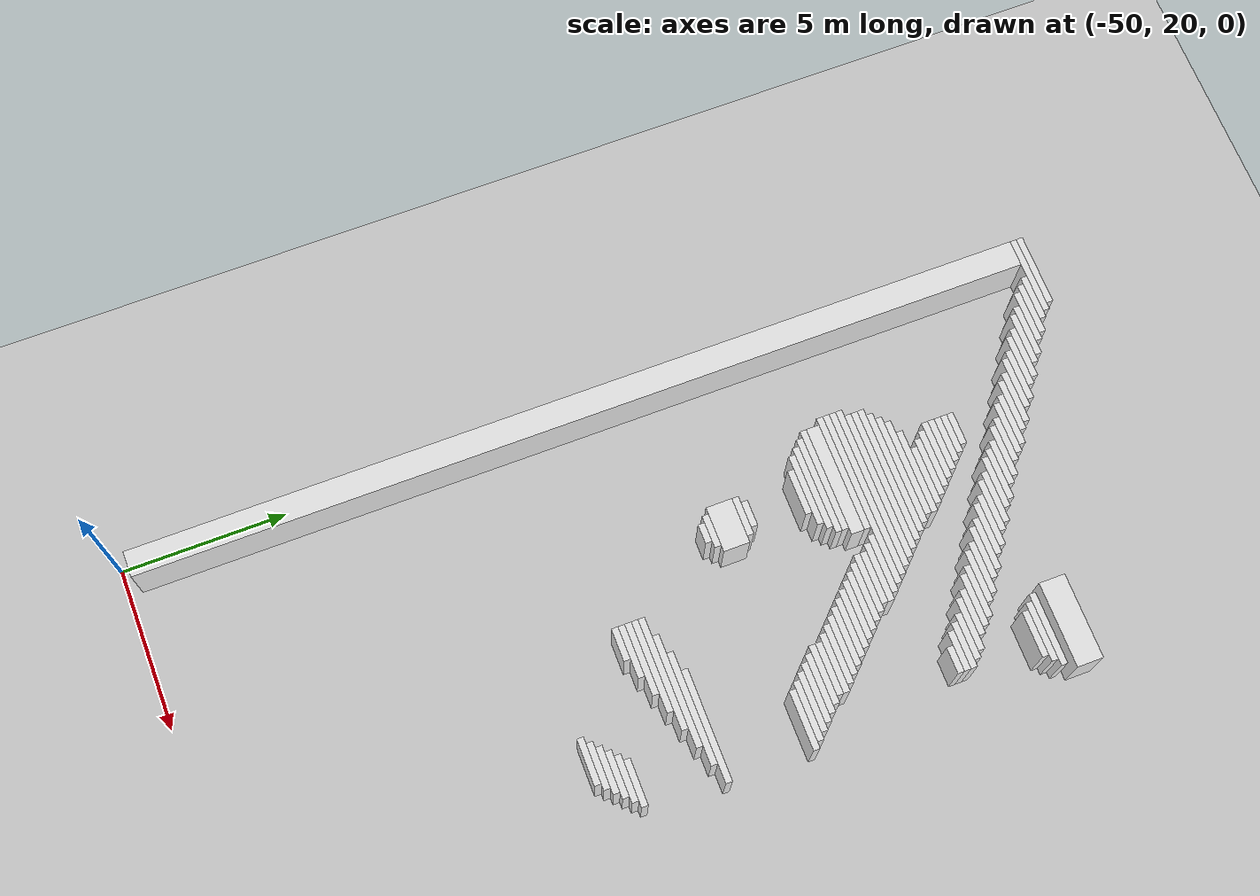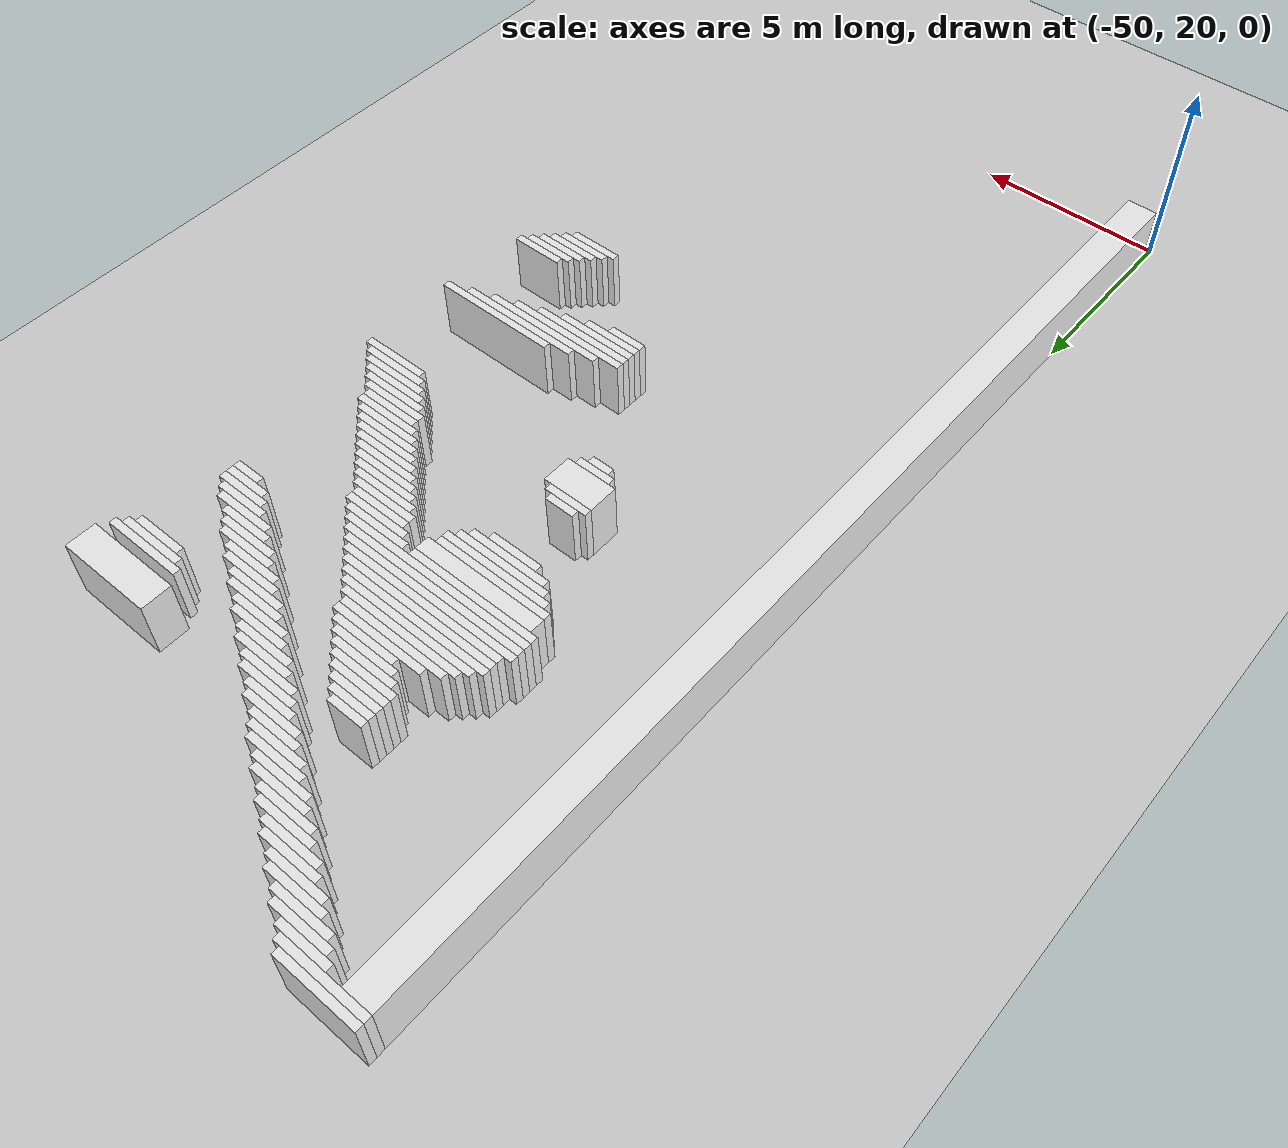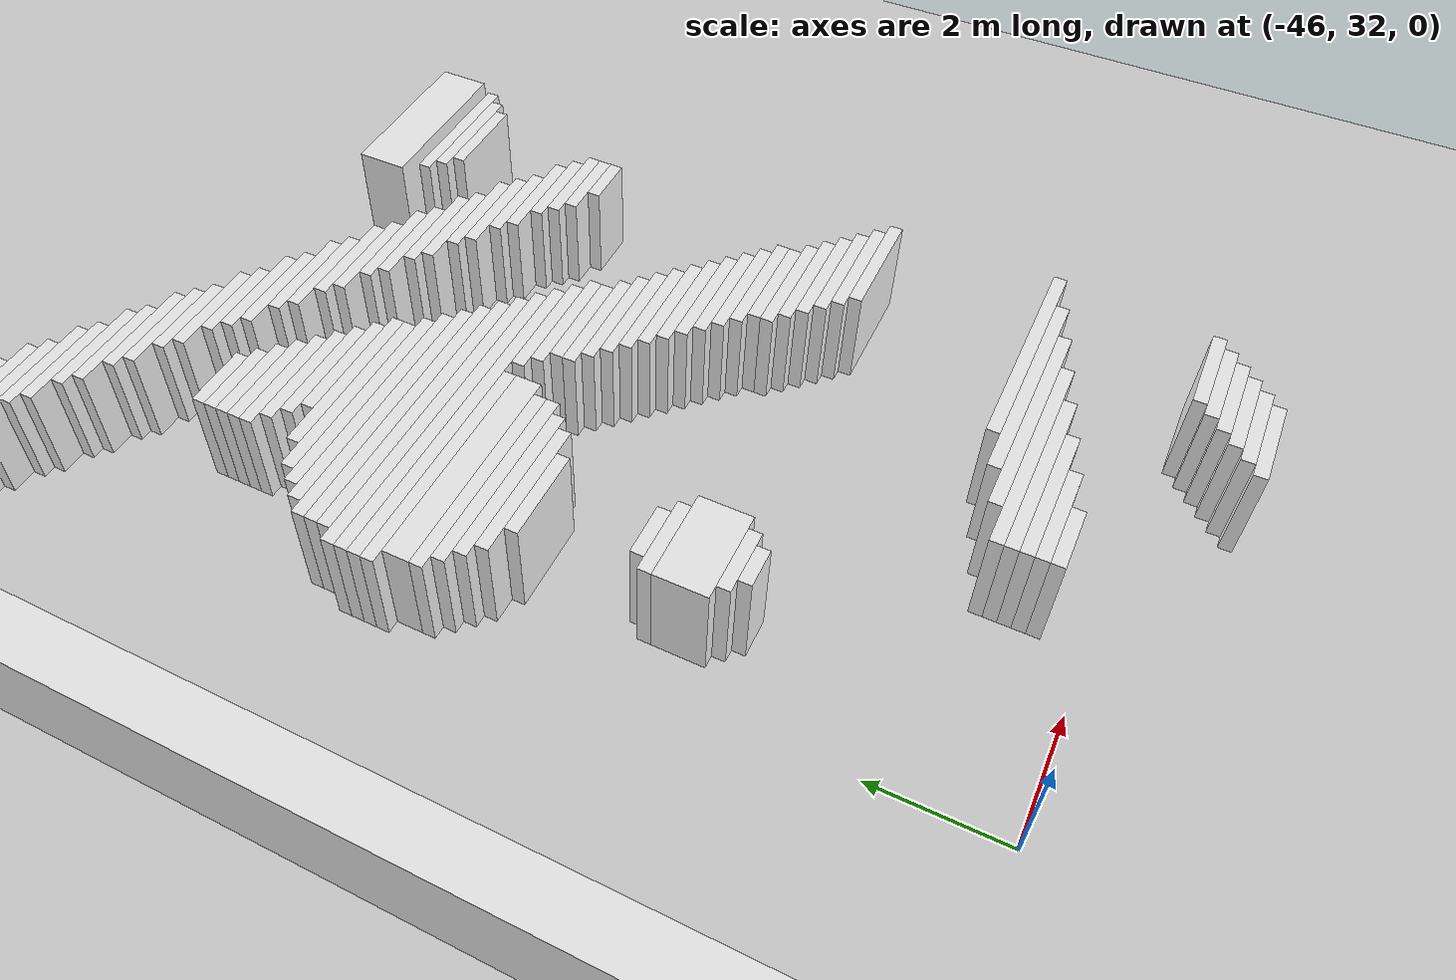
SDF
<sdf version="1.7">
 <world name="default">
  <model name="ground_plane">
   <static>1</static>
   <link name="link">
    <collision name="collision">
     <geometry><plane><normal>0 0 1</normal><size>120 120</size></plane></geometry>
    </collision>
    <visual name="visual">
     <geometry><plane><normal>0 0 1</normal><size>120 120</size></plane></geometry>
     <material>
      <script><uri>file://media/materials/scripts/gazebo.material</uri><name>Gazebo/Grey</name></script>
     </material>
    </visual>
   </link>
  </model>
  <model name="random_complex_02_model">
   <static>1</static>
   <link name="obs_2">
    <pose>-48.9000 48.3000 0.8000 0 0 0</pose>
    <collision name="obs_2_col"><geometry><box><size>2.2000 0.2000 1.6000</size></box></geometry></collision>
    <visual name="obs_2_vis">
     <geometry><box><size>2.2000 0.2000 1.6000</size></box></geometry>
     <material>
      <script><uri>file://media/materials/scripts/gazebo.material</uri><name>Gazebo/White</name></script>
     </material>
    </visual>
   </link>
   <link name="obs_7">
    <pose>-48.8000 48.1000 0.8000 0 0 0</pose>
    <collision name="obs_7_col"><geometry><box><size>2.4000 0.2000 1.6000</size></box></geometry></collision>
    <visual name="obs_7_vis">
     <geometry><box><size>2.4000 0.2000 1.6000</size></box></geometry>
     <material>
      <script><uri>file://media/materials/scripts/gazebo.material</uri><name>Gazebo/White</name></script>
     </material>
    </visual>
   </link>
   <link name="obs_12">
    <pose>-48.1000 47.9000 0.8000 0 0 0</pose>
    <collision name="obs_12_col"><geometry><box><size>1.4000 0.2000 1.6000</size></box></geometry></collision>
    <visual name="obs_12_vis">
     <geometry><box><size>1.4000 0.2000 1.6000</size></box></geometry>
     <material>
      <script><uri>file://media/materials/scripts/gazebo.material</uri><name>Gazebo/White</name></script>
     </material>
    </visual>
   </link>
   <link name="obs_19">
    <pose>-47.8000 47.7000 0.8000 0 0 0</pose>
    <collision name="obs_19_col"><geometry><box><size>1.6000 0.2000 1.6000</size></box></geometry></collision>
    <visual name="obs_19_vis">
     <geometry><box><size>1.6000 0.2000 1.6000</size></box></geometry>
     <material>
      <script><uri>file://media/materials/scripts/gazebo.material</uri><name>Gazebo/White</name></script>
     </material>
    </visual>
   </link>
   <link name="obs_26">
    <pose>-47.6000 47.5000 0.8000 0 0 0</pose>
    <collision name="obs_26_col"><geometry><box><size>1.6000 0.2000 1.6000</size></box></geometry></collision>
    <visual name="obs_26_vis">
     <geometry><box><size>1.6000 0.2000 1.6000</size></box></geometry>
     <material>
      <script><uri>file://media/materials/scripts/gazebo.material</uri><name>Gazebo/White</name></script>
     </material>
    </visual>
   </link>
   <link name="obs_33">
    <pose>-47.2000 47.3000 0.8000 0 0 0</pose>
    <collision name="obs_33_col"><geometry><box><size>1.6000 0.2000 1.6000</size></box></geometry></collision>
    <visual name="obs_33_vis">
     <geometry><box><size>1.6000 0.2000 1.6000</size></box></geometry>
     <material>
      <script><uri>file://media/materials/scripts/gazebo.material</uri><name>Gazebo/White</name></script>
     </material>
    </visual>
   </link>
   <link name="obs_41">
    <pose>-47.0000 47.1000 0.8000 0 0 0</pose>
    <collision name="obs_41_col"><geometry><box><size>1.6000 0.2000 1.6000</size></box></geometry></collision>
    <visual name="obs_41_vis">
     <geometry><box><size>1.6000 0.2000 1.6000</size></box></geometry>
     <material>
      <script><uri>file://media/materials/scripts/gazebo.material</uri><name>Gazebo/White</name></script>
     </material>
    </visual>
   </link>
   <link name="obs_47">
    <pose>-46.6000 46.9000 0.8000 0 0 0</pose>
    <collision name="obs_47_col"><geometry><box><size>1.6000 0.2000 1.6000</size></box></geometry></collision>
    <visual name="obs_47_vis">
     <geometry><box><size>1.6000 0.2000 1.6000</size></box></geometry>
     <material>
      <script><uri>file://media/materials/scripts/gazebo.material</uri><name>Gazebo/White</name></script>
     </material>
    </visual>
   </link>
   <link name="obs_54">
    <pose>-46.4000 46.7000 0.8000 0 0 0</pose>
    <collision name="obs_54_col"><geometry><box><size>1.6000 0.2000 1.6000</size></box></geometry></collision>
    <visual name="obs_54_vis">
     <geometry><box><size>1.6000 0.2000 1.6000</size></box></geometry>
     <material>
      <script><uri>file://media/materials/scripts/gazebo.material</uri><name>Gazebo/White</name></script>
     </material>
    </visual>
   </link>
   <link name="obs_61">
    <pose>-46.0000 46.5000 0.8000 0 0 0</pose>
    <collision name="obs_61_col"><geometry><box><size>1.6000 0.2000 1.6000</size></box></geometry></collision>
    <visual name="obs_61_vis">
     <geometry><box><size>1.6000 0.2000 1.6000</size></box></geometry>
     <material>
      <script><uri>file://media/materials/scripts/gazebo.material</uri><name>Gazebo/White</name></script>
     </material>
    </visual>
   </link>
   <link name="obs_69">
    <pose>-45.8000 46.3000 0.8000 0 0 0</pose>
    <collision name="obs_69_col"><geometry><box><size>1.6000 0.2000 1.6000</size></box></geometry></collision>
    <visual name="obs_69_vis">
     <geometry><box><size>1.6000 0.2000 1.6000</size></box></geometry>
     <material>
      <script><uri>file://media/materials/scripts/gazebo.material</uri><name>Gazebo/White</name></script>
     </material>
    </visual>
   </link>
   <link name="obs_77">
    <pose>-45.4000 46.1000 0.8000 0 0 0</pose>
    <collision name="obs_77_col"><geometry><box><size>1.6000 0.2000 1.6000</size></box></geometry></collision>
    <visual name="obs_77_vis">
     <geometry><box><size>1.6000 0.2000 1.6000</size></box></geometry>
     <material>
      <script><uri>file://media/materials/scripts/gazebo.material</uri><name>Gazebo/White</name></script>
     </material>
    </visual>
   </link>
   <link name="obs_85">
    <pose>-45.2000 45.9000 0.8000 0 0 0</pose>
    <collision name="obs_85_col"><geometry><box><size>1.6000 0.2000 1.6000</size></box></geometry></collision>
    <visual name="obs_85_vis">
     <geometry><box><size>1.6000 0.2000 1.6000</size></box></geometry>
     <material>
      <script><uri>file://media/materials/scripts/gazebo.material</uri><name>Gazebo/White</name></script>
     </material>
    </visual>
   </link>
   <link name="obs_91">
    <pose>-44.8000 45.7000 0.8000 0 0 0</pose>
    <collision name="obs_91_col"><geometry><box><size>1.6000 0.2000 1.6000</size></box></geometry></collision>
    <visual name="obs_91_vis">
     <geometry><box><size>1.6000 0.2000 1.6000</size></box></geometry>
     <material>
      <script><uri>file://media/materials/scripts/gazebo.material</uri><name>Gazebo/White</name></script>
     </material>
    </visual>
   </link>
   <link name="obs_99">
    <pose>-44.6000 45.5000 0.8000 0 0 0</pose>
    <collision name="obs_99_col"><geometry><box><size>1.6000 0.2000 1.6000</size></box></geometry></collision>
    <visual name="obs_99_vis">
     <geometry><box><size>1.6000 0.2000 1.6000</size></box></geometry>
     <material>
      <script><uri>file://media/materials/scripts/gazebo.material</uri><name>Gazebo/White</name></script>
     </material>
    </visual>
   </link>
   <link name="obs_108">
    <pose>-44.3000 45.3000 0.8000 0 0 0</pose>
    <collision name="obs_108_col"><geometry><box><size>1.4000 0.2000 1.6000</size></box></geometry></collision>
    <visual name="obs_108_vis">
     <geometry><box><size>1.4000 0.2000 1.6000</size></box></geometry>
     <material>
      <script><uri>file://media/materials/scripts/gazebo.material</uri><name>Gazebo/White</name></script>
     </material>
    </visual>
   </link>
   <link name="obs_118">
    <pose>-44.0000 45.1000 0.8000 0 0 0</pose>
    <collision name="obs_118_col"><geometry><box><size>1.6000 0.2000 1.6000</size></box></geometry></collision>
    <visual name="obs_118_vis">
     <geometry><box><size>1.6000 0.2000 1.6000</size></box></geometry>
     <material>
      <script><uri>file://media/materials/scripts/gazebo.material</uri><name>Gazebo/White</name></script>
     </material>
    </visual>
   </link>
   <link name="obs_128">
    <pose>-43.7000 44.9000 0.8000 0 0 0</pose>
    <collision name="obs_128_col"><geometry><box><size>1.4000 0.2000 1.6000</size></box></geometry></collision>
    <visual name="obs_128_vis">
     <geometry><box><size>1.4000 0.2000 1.6000</size></box></geometry>
     <material>
      <script><uri>file://media/materials/scripts/gazebo.material</uri><name>Gazebo/White</name></script>
     </material>
    </visual>
   </link>
   <link name="obs_137">
    <pose>-43.4000 44.7000 0.8000 0 0 0</pose>
    <collision name="obs_137_col"><geometry><box><size>1.6000 0.2000 1.6000</size></box></geometry></collision>
    <visual name="obs_137_vis">
     <geometry><box><size>1.6000 0.2000 1.6000</size></box></geometry>
     <material>
      <script><uri>file://media/materials/scripts/gazebo.material</uri><name>Gazebo/White</name></script>
     </material>
    </visual>
   </link>
   <link name="obs_143">
    <pose>-38.7000 44.8000 0.8000 0 0 0</pose>
    <collision name="obs_143_col"><geometry><box><size>2.6000 0.8000 1.6000</size></box></geometry></collision>
    <visual name="obs_143_vis">
     <geometry><box><size>2.6000 0.8000 1.6000</size></box></geometry>
     <material>
      <script><uri>file://media/materials/scripts/gazebo.material</uri><name>Gazebo/White</name></script>
     </material>
    </visual>
   </link>
   <link name="obs_145">
    <pose>-43.2000 44.5000 0.8000 0 0 0</pose>
    <collision name="obs_145_col"><geometry><box><size>1.6000 0.2000 1.6000</size></box></geometry></collision>
    <visual name="obs_145_vis">
     <geometry><box><size>1.6000 0.2000 1.6000</size></box></geometry>
     <material>
      <script><uri>file://media/materials/scripts/gazebo.material</uri><name>Gazebo/White</name></script>
     </material>
    </visual>
   </link>
   <link name="obs_151">
    <pose>-42.8000 44.3000 0.8000 0 0 0</pose>
    <collision name="obs_151_col"><geometry><box><size>1.6000 0.2000 1.6000</size></box></geometry></collision>
    <visual name="obs_151_vis">
     <geometry><box><size>1.6000 0.2000 1.6000</size></box></geometry>
     <material>
      <script><uri>file://media/materials/scripts/gazebo.material</uri><name>Gazebo/White</name></script>
     </material>
    </visual>
   </link>
   <link name="obs_159">
    <pose>-45.1000 44.1000 0.8000 0 0 0</pose>
    <collision name="obs_159_col"><geometry><box><size>1.0000 0.2000 1.6000</size></box></geometry></collision>
    <visual name="obs_159_vis">
     <geometry><box><size>1.0000 0.2000 1.6000</size></box></geometry>
     <material>
      <script><uri>file://media/materials/scripts/gazebo.material</uri><name>Gazebo/White</name></script>
     </material>
    </visual>
   </link>
   <link name="obs_160">
    <pose>-42.6000 44.1000 0.8000 0 0 0</pose>
    <collision name="obs_160_col"><geometry><box><size>1.6000 0.2000 1.6000</size></box></geometry></collision>
    <visual name="obs_160_vis">
     <geometry><box><size>1.6000 0.2000 1.6000</size></box></geometry>
     <material>
      <script><uri>file://media/materials/scripts/gazebo.material</uri><name>Gazebo/White</name></script>
     </material>
    </visual>
   </link>
   <link name="obs_161">
    <pose>-38.7000 44.1000 0.8000 0 0 0</pose>
    <collision name="obs_161_col"><geometry><box><size>2.2000 0.2000 1.6000</size></box></geometry></collision>
    <visual name="obs_161_vis">
     <geometry><box><size>2.2000 0.2000 1.6000</size></box></geometry>
     <material>
      <script><uri>file://media/materials/scripts/gazebo.material</uri><name>Gazebo/White</name></script>
     </material>
    </visual>
   </link>
   <link name="obs_166">
    <pose>-45.0000 43.9000 0.8000 0 0 0</pose>
    <collision name="obs_166_col"><geometry><box><size>1.2000 0.2000 1.6000</size></box></geometry></collision>
    <visual name="obs_166_vis">
     <geometry><box><size>1.2000 0.2000 1.6000</size></box></geometry>
     <material>
      <script><uri>file://media/materials/scripts/gazebo.material</uri><name>Gazebo/White</name></script>
     </material>
    </visual>
   </link>
   <link name="obs_167">
    <pose>-42.2000 43.9000 0.8000 0 0 0</pose>
    <collision name="obs_167_col"><geometry><box><size>1.6000 0.2000 1.6000</size></box></geometry></collision>
    <visual name="obs_167_vis">
     <geometry><box><size>1.6000 0.2000 1.6000</size></box></geometry>
     <material>
      <script><uri>file://media/materials/scripts/gazebo.material</uri><name>Gazebo/White</name></script>
     </material>
    </visual>
   </link>
   <link name="obs_168">
    <pose>-38.7000 43.9000 0.8000 0 0 0</pose>
    <collision name="obs_168_col"><geometry><box><size>1.8000 0.2000 1.6000</size></box></geometry></collision>
    <visual name="obs_168_vis">
     <geometry><box><size>1.8000 0.2000 1.6000</size></box></geometry>
     <material>
      <script><uri>file://media/materials/scripts/gazebo.material</uri><name>Gazebo/White</name></script>
     </material>
    </visual>
   </link>
   <link name="obs_174">
    <pose>-44.9000 43.7000 0.8000 0 0 0</pose>
    <collision name="obs_174_col"><geometry><box><size>1.4000 0.2000 1.6000</size></box></geometry></collision>
    <visual name="obs_174_vis">
     <geometry><box><size>1.4000 0.2000 1.6000</size></box></geometry>
     <material>
      <script><uri>file://media/materials/scripts/gazebo.material</uri><name>Gazebo/White</name></script>
     </material>
    </visual>
   </link>
   <link name="obs_175">
    <pose>-42.0000 43.7000 0.8000 0 0 0</pose>
    <collision name="obs_175_col"><geometry><box><size>1.6000 0.2000 1.6000</size></box></geometry></collision>
    <visual name="obs_175_vis">
     <geometry><box><size>1.6000 0.2000 1.6000</size></box></geometry>
     <material>
      <script><uri>file://media/materials/scripts/gazebo.material</uri><name>Gazebo/White</name></script>
     </material>
    </visual>
   </link>
   <link name="obs_176">
    <pose>-38.7000 43.7000 0.8000 0 0 0</pose>
    <collision name="obs_176_col"><geometry><box><size>1.4000 0.2000 1.6000</size></box></geometry></collision>
    <visual name="obs_176_vis">
     <geometry><box><size>1.4000 0.2000 1.6000</size></box></geometry>
     <material>
      <script><uri>file://media/materials/scripts/gazebo.material</uri><name>Gazebo/White</name></script>
     </material>
    </visual>
   </link>
   <link name="obs_180">
    <pose>-44.8000 43.5000 0.8000 0 0 0</pose>
    <collision name="obs_180_col"><geometry><box><size>1.6000 0.2000 1.6000</size></box></geometry></collision>
    <visual name="obs_180_vis">
     <geometry><box><size>1.6000 0.2000 1.6000</size></box></geometry>
     <material>
      <script><uri>file://media/materials/scripts/gazebo.material</uri><name>Gazebo/White</name></script>
     </material>
    </visual>
   </link>
   <link name="obs_181">
    <pose>-41.6000 43.5000 0.8000 0 0 0</pose>
    <collision name="obs_181_col"><geometry><box><size>1.6000 0.2000 1.6000</size></box></geometry></collision>
    <visual name="obs_181_vis">
     <geometry><box><size>1.6000 0.2000 1.6000</size></box></geometry>
     <material>
      <script><uri>file://media/materials/scripts/gazebo.material</uri><name>Gazebo/White</name></script>
     </material>
    </visual>
   </link>
   <link name="obs_187">
    <pose>-44.7000 43.3000 0.8000 0 0 0</pose>
    <collision name="obs_187_col"><geometry><box><size>1.8000 0.2000 1.6000</size></box></geometry></collision>
    <visual name="obs_187_vis">
     <geometry><box><size>1.8000 0.2000 1.6000</size></box></geometry>
     <material>
      <script><uri>file://media/materials/scripts/gazebo.material</uri><name>Gazebo/White</name></script>
     </material>
    </visual>
   </link>
   <link name="obs_188">
    <pose>-41.4000 43.3000 0.8000 0 0 0</pose>
    <collision name="obs_188_col"><geometry><box><size>1.6000 0.2000 1.6000</size></box></geometry></collision>
    <visual name="obs_188_vis">
     <geometry><box><size>1.6000 0.2000 1.6000</size></box></geometry>
     <material>
      <script><uri>file://media/materials/scripts/gazebo.material</uri><name>Gazebo/White</name></script>
     </material>
    </visual>
   </link>
   <link name="obs_195">
    <pose>-44.5000 43.1000 0.8000 0 0 0</pose>
    <collision name="obs_195_col"><geometry><box><size>1.8000 0.2000 1.6000</size></box></geometry></collision>
    <visual name="obs_195_vis">
     <geometry><box><size>1.8000 0.2000 1.6000</size></box></geometry>
     <material>
      <script><uri>file://media/materials/scripts/gazebo.material</uri><name>Gazebo/White</name></script>
     </material>
    </visual>
   </link>
   <link name="obs_196">
    <pose>-41.0000 43.1000 0.8000 0 0 0</pose>
    <collision name="obs_196_col"><geometry><box><size>1.6000 0.2000 1.6000</size></box></geometry></collision>
    <visual name="obs_196_vis">
     <geometry><box><size>1.6000 0.2000 1.6000</size></box></geometry>
     <material>
      <script><uri>file://media/materials/scripts/gazebo.material</uri><name>Gazebo/White</name></script>
     </material>
    </visual>
   </link>
   <link name="obs_202">
    <pose>-44.3000 42.9000 0.8000 0 0 0</pose>
    <collision name="obs_202_col"><geometry><box><size>1.8000 0.2000 1.6000</size></box></geometry></collision>
    <visual name="obs_202_vis">
     <geometry><box><size>1.8000 0.2000 1.6000</size></box></geometry>
     <material>
      <script><uri>file://media/materials/scripts/gazebo.material</uri><name>Gazebo/White</name></script>
     </material>
    </visual>
   </link>
   <link name="obs_203">
    <pose>-40.8000 42.9000 0.8000 0 0 0</pose>
    <collision name="obs_203_col"><geometry><box><size>1.6000 0.2000 1.6000</size></box></geometry></collision>
    <visual name="obs_203_vis">
     <geometry><box><size>1.6000 0.2000 1.6000</size></box></geometry>
     <material>
      <script><uri>file://media/materials/scripts/gazebo.material</uri><name>Gazebo/White</name></script>
     </material>
    </visual>
   </link>
   <link name="obs_209">
    <pose>-44.1000 42.7000 0.8000 0 0 0</pose>
    <collision name="obs_209_col"><geometry><box><size>1.8000 0.2000 1.6000</size></box></geometry></collision>
    <visual name="obs_209_vis">
     <geometry><box><size>1.8000 0.2000 1.6000</size></box></geometry>
     <material>
      <script><uri>file://media/materials/scripts/gazebo.material</uri><name>Gazebo/White</name></script>
     </material>
    </visual>
   </link>
   <link name="obs_210">
    <pose>-40.4000 42.7000 0.8000 0 0 0</pose>
    <collision name="obs_210_col"><geometry><box><size>1.6000 0.2000 1.6000</size></box></geometry></collision>
    <visual name="obs_210_vis">
     <geometry><box><size>1.6000 0.2000 1.6000</size></box></geometry>
     <material>
      <script><uri>file://media/materials/scripts/gazebo.material</uri><name>Gazebo/White</name></script>
     </material>
    </visual>
   </link>
   <link name="obs_216">
    <pose>-44.3000 42.5000 0.8000 0 0 0</pose>
    <collision name="obs_216_col"><geometry><box><size>2.6000 0.2000 1.6000</size></box></geometry></collision>
    <visual name="obs_216_vis">
     <geometry><box><size>2.6000 0.2000 1.6000</size></box></geometry>
     <material>
      <script><uri>file://media/materials/scripts/gazebo.material</uri><name>Gazebo/White</name></script>
     </material>
    </visual>
   </link>
   <link name="obs_217">
    <pose>-40.2000 42.5000 0.8000 0 0 0</pose>
    <collision name="obs_217_col"><geometry><box><size>1.6000 0.2000 1.6000</size></box></geometry></collision>
    <visual name="obs_217_vis">
     <geometry><box><size>1.6000 0.2000 1.6000</size></box></geometry>
     <material>
      <script><uri>file://media/materials/scripts/gazebo.material</uri><name>Gazebo/White</name></script>
     </material>
    </visual>
   </link>
   <link name="obs_222">
    <pose>-44.5000 42.3000 0.8000 0 0 0</pose>
    <collision name="obs_222_col"><geometry><box><size>3.0000 0.2000 1.6000</size></box></geometry></collision>
    <visual name="obs_222_vis">
     <geometry><box><size>3.0000 0.2000 1.6000</size></box></geometry>
     <material>
      <script><uri>file://media/materials/scripts/gazebo.material</uri><name>Gazebo/White</name></script>
     </material>
    </visual>
   </link>
   <link name="obs_223">
    <pose>-39.9000 42.3000 0.8000 0 0 0</pose>
    <collision name="obs_223_col"><geometry><box><size>1.4000 0.2000 1.6000</size></box></geometry></collision>
    <visual name="obs_223_vis">
     <geometry><box><size>1.4000 0.2000 1.6000</size></box></geometry>
     <material>
      <script><uri>file://media/materials/scripts/gazebo.material</uri><name>Gazebo/White</name></script>
     </material>
    </visual>
   </link>
   <link name="obs_231">
    <pose>-44.5000 42.1000 0.8000 0 0 0</pose>
    <collision name="obs_231_col"><geometry><box><size>3.4000 0.2000 1.6000</size></box></geometry></collision>
    <visual name="obs_231_vis">
     <geometry><box><size>3.4000 0.2000 1.6000</size></box></geometry>
     <material>
      <script><uri>file://media/materials/scripts/gazebo.material</uri><name>Gazebo/White</name></script>
     </material>
    </visual>
   </link>
   <link name="obs_232">
    <pose>-39.6000 42.1000 0.8000 0 0 0</pose>
    <collision name="obs_232_col"><geometry><box><size>1.6000 0.2000 1.6000</size></box></geometry></collision>
    <visual name="obs_232_vis">
     <geometry><box><size>1.6000 0.2000 1.6000</size></box></geometry>
     <material>
      <script><uri>file://media/materials/scripts/gazebo.material</uri><name>Gazebo/White</name></script>
     </material>
    </visual>
   </link>
   <link name="obs_237">
    <pose>-44.5000 41.9000 0.8000 0 0 0</pose>
    <collision name="obs_237_col"><geometry><box><size>3.8000 0.2000 1.6000</size></box></geometry></collision>
    <visual name="obs_237_vis">
     <geometry><box><size>3.8000 0.2000 1.6000</size></box></geometry>
     <material>
      <script><uri>file://media/materials/scripts/gazebo.material</uri><name>Gazebo/White</name></script>
     </material>
    </visual>
   </link>
   <link name="obs_238">
    <pose>-39.3000 41.9000 0.8000 0 0 0</pose>
    <collision name="obs_238_col"><geometry><box><size>1.4000 0.2000 1.6000</size></box></geometry></collision>
    <visual name="obs_238_vis">
     <geometry><box><size>1.4000 0.2000 1.6000</size></box></geometry>
     <material>
      <script><uri>file://media/materials/scripts/gazebo.material</uri><name>Gazebo/White</name></script>
     </material>
    </visual>
   </link>
   <link name="obs_242">
    <pose>-44.5000 41.7000 0.8000 0 0 0</pose>
    <collision name="obs_242_col"><geometry><box><size>4.2000 0.2000 1.6000</size></box></geometry></collision>
    <visual name="obs_242_vis">
     <geometry><box><size>4.2000 0.2000 1.6000</size></box></geometry>
     <material>
      <script><uri>file://media/materials/scripts/gazebo.material</uri><name>Gazebo/White</name></script>
     </material>
    </visual>
   </link>
   <link name="obs_243">
    <pose>-39.1000 41.7000 0.8000 0 0 0</pose>
    <collision name="obs_243_col"><geometry><box><size>1.4000 0.2000 1.6000</size></box></geometry></collision>
    <visual name="obs_243_vis">
     <geometry><box><size>1.4000 0.2000 1.6000</size></box></geometry>
     <material>
      <script><uri>file://media/materials/scripts/gazebo.material</uri><name>Gazebo/White</name></script>
     </material>
    </visual>
   </link>
   <link name="obs_253">
    <pose>-44.4000 41.5000 0.8000 0 0 0</pose>
    <collision name="obs_253_col"><geometry><box><size>4.4000 0.2000 1.6000</size></box></geometry></collision>
    <visual name="obs_253_vis">
     <geometry><box><size>4.4000 0.2000 1.6000</size></box></geometry>
     <material>
      <script><uri>file://media/materials/scripts/gazebo.material</uri><name>Gazebo/White</name></script>
     </material>
    </visual>
   </link>
   <link name="obs_254">
    <pose>-39.0000 41.5000 0.8000 0 0 0</pose>
    <collision name="obs_254_col"><geometry><box><size>1.2000 0.2000 1.6000</size></box></geometry></collision>
    <visual name="obs_254_vis">
     <geometry><box><size>1.2000 0.2000 1.6000</size></box></geometry>
     <material>
      <script><uri>file://media/materials/scripts/gazebo.material</uri><name>Gazebo/White</name></script>
     </material>
    </visual>
   </link>
   <link name="obs_261">
    <pose>-44.3000 41.3000 0.8000 0 0 0</pose>
    <collision name="obs_261_col"><geometry><box><size>4.6000 0.2000 1.6000</size></box></geometry></collision>
    <visual name="obs_261_vis">
     <geometry><box><size>4.6000 0.2000 1.6000</size></box></geometry>
     <material>
      <script><uri>file://media/materials/scripts/gazebo.material</uri><name>Gazebo/White</name></script>
     </material>
    </visual>
   </link>
   <link name="obs_262">
    <pose>-38.8000 41.3000 0.8000 0 0 0</pose>
    <collision name="obs_262_col"><geometry><box><size>0.8000 0.2000 1.6000</size></box></geometry></collision>
    <visual name="obs_262_vis">
     <geometry><box><size>0.8000 0.2000 1.6000</size></box></geometry>
     <material>
      <script><uri>file://media/materials/scripts/gazebo.material</uri><name>Gazebo/White</name></script>
     </material>
    </visual>
   </link>
   <link name="obs_271">
    <pose>-44.3000 41.1000 0.8000 0 0 0</pose>
    <collision name="obs_271_col"><geometry><box><size>5.0000 0.2000 1.6000</size></box></geometry></collision>
    <visual name="obs_271_vis">
     <geometry><box><size>5.0000 0.2000 1.6000</size></box></geometry>
     <material>
      <script><uri>file://media/materials/scripts/gazebo.material</uri><name>Gazebo/White</name></script>
     </material>
    </visual>
   </link>
   <link name="obs_280">
    <pose>-44.2000 40.9000 0.8000 0 0 0</pose>
    <collision name="obs_280_col"><geometry><box><size>5.2000 0.2000 1.6000</size></box></geometry></collision>
    <visual name="obs_280_vis">
     <geometry><box><size>5.2000 0.2000 1.6000</size></box></geometry>
     <material>
      <script><uri>file://media/materials/scripts/gazebo.material</uri><name>Gazebo/White</name></script>
     </material>
    </visual>
   </link>
   <link name="obs_290">
    <pose>-44.1000 40.7000 0.8000 0 0 0</pose>
    <collision name="obs_290_col"><geometry><box><size>5.4000 0.2000 1.6000</size></box></geometry></collision>
    <visual name="obs_290_vis">
     <geometry><box><size>5.4000 0.2000 1.6000</size></box></geometry>
     <material>
      <script><uri>file://media/materials/scripts/gazebo.material</uri><name>Gazebo/White</name></script>
     </material>
    </visual>
   </link>
   <link name="obs_300">
    <pose>-45.0000 40.5000 0.8000 0 0 0</pose>
    <collision name="obs_300_col"><geometry><box><size>3.6000 0.2000 1.6000</size></box></geometry></collision>
    <visual name="obs_300_vis">
     <geometry><box><size>3.6000 0.2000 1.6000</size></box></geometry>
     <material>
      <script><uri>file://media/materials/scripts/gazebo.material</uri><name>Gazebo/White</name></script>
     </material>
    </visual>
   </link>
   <link name="obs_301">
    <pose>-42.1000 40.5000 0.8000 0 0 0</pose>
    <collision name="obs_301_col"><geometry><box><size>1.8000 0.2000 1.6000</size></box></geometry></collision>
    <visual name="obs_301_vis">
     <geometry><box><size>1.8000 0.2000 1.6000</size></box></geometry>
     <material>
      <script><uri>file://media/materials/scripts/gazebo.material</uri><name>Gazebo/White</name></script>
     </material>
    </visual>
   </link>
   <link name="obs_311">
    <pose>-41.9000 40.3000 0.8000 0 0 0</pose>
    <collision name="obs_311_col"><geometry><box><size>1.8000 0.2000 1.6000</size></box></geometry></collision>
    <visual name="obs_311_vis">
     <geometry><box><size>1.8000 0.2000 1.6000</size></box></geometry>
     <material>
      <script><uri>file://media/materials/scripts/gazebo.material</uri><name>Gazebo/White</name></script>
     </material>
    </visual>
   </link>
   <link name="obs_318">
    <pose>-44.9000 40.2000 0.8000 0 0 0</pose>
    <collision name="obs_318_col"><geometry><box><size>3.4000 0.4000 1.6000</size></box></geometry></collision>
    <visual name="obs_318_vis">
     <geometry><box><size>3.4000 0.4000 1.6000</size></box></geometry>
     <material>
      <script><uri>file://media/materials/scripts/gazebo.material</uri><name>Gazebo/White</name></script>
     </material>
    </visual>
   </link>
   <link name="obs_323">
    <pose>-41.8000 40.1000 0.8000 0 0 0</pose>
    <collision name="obs_323_col"><geometry><box><size>1.6000 0.2000 1.6000</size></box></geometry></collision>
    <visual name="obs_323_vis">
     <geometry><box><size>1.6000 0.2000 1.6000</size></box></geometry>
     <material>
      <script><uri>file://media/materials/scripts/gazebo.material</uri><name>Gazebo/White</name></script>
     </material>
    </visual>
   </link>
   <link name="obs_330">
    <pose>-45.0000 39.9000 0.8000 0 0 0</pose>
    <collision name="obs_330_col"><geometry><box><size>3.2000 0.2000 1.6000</size></box></geometry></collision>
    <visual name="obs_330_vis">
     <geometry><box><size>3.2000 0.2000 1.6000</size></box></geometry>
     <material>
      <script><uri>file://media/materials/scripts/gazebo.material</uri><name>Gazebo/White</name></script>
     </material>
    </visual>
   </link>
   <link name="obs_331">
    <pose>-41.7000 39.9000 0.8000 0 0 0</pose>
    <collision name="obs_331_col"><geometry><box><size>1.8000 0.2000 1.6000</size></box></geometry></collision>
    <visual name="obs_331_vis">
     <geometry><box><size>1.8000 0.2000 1.6000</size></box></geometry>
     <material>
      <script><uri>file://media/materials/scripts/gazebo.material</uri><name>Gazebo/White</name></script>
     </material>
    </visual>
   </link>
   <link name="obs_338">
    <pose>-44.9000 39.7000 0.8000 0 0 0</pose>
    <collision name="obs_338_col"><geometry><box><size>3.0000 0.2000 1.6000</size></box></geometry></collision>
    <visual name="obs_338_vis">
     <geometry><box><size>3.0000 0.2000 1.6000</size></box></geometry>
     <material>
      <script><uri>file://media/materials/scripts/gazebo.material</uri><name>Gazebo/White</name></script>
     </material>
    </visual>
   </link>
   <link name="obs_339">
    <pose>-41.5000 39.7000 0.8000 0 0 0</pose>
    <collision name="obs_339_col"><geometry><box><size>1.8000 0.2000 1.6000</size></box></geometry></collision>
    <visual name="obs_339_vis">
     <geometry><box><size>1.8000 0.2000 1.6000</size></box></geometry>
     <material>
      <script><uri>file://media/materials/scripts/gazebo.material</uri><name>Gazebo/White</name></script>
     </material>
    </visual>
   </link>
   <link name="obs_346">
    <pose>-44.9000 39.5000 0.8000 0 0 0</pose>
    <collision name="obs_346_col"><geometry><box><size>2.6000 0.2000 1.6000</size></box></geometry></collision>
    <visual name="obs_346_vis">
     <geometry><box><size>2.6000 0.2000 1.6000</size></box></geometry>
     <material>
      <script><uri>file://media/materials/scripts/gazebo.material</uri><name>Gazebo/White</name></script>
     </material>
    </visual>
   </link>
   <link name="obs_347">
    <pose>-41.3000 39.5000 0.8000 0 0 0</pose>
    <collision name="obs_347_col"><geometry><box><size>1.8000 0.2000 1.6000</size></box></geometry></collision>
    <visual name="obs_347_vis">
     <geometry><box><size>1.8000 0.2000 1.6000</size></box></geometry>
     <material>
      <script><uri>file://media/materials/scripts/gazebo.material</uri><name>Gazebo/White</name></script>
     </material>
    </visual>
   </link>
   <link name="obs_355">
    <pose>-44.9000 39.3000 0.8000 0 0 0</pose>
    <collision name="obs_355_col"><geometry><box><size>2.2000 0.2000 1.6000</size></box></geometry></collision>
    <visual name="obs_355_vis">
     <geometry><box><size>2.2000 0.2000 1.6000</size></box></geometry>
     <material>
      <script><uri>file://media/materials/scripts/gazebo.material</uri><name>Gazebo/White</name></script>
     </material>
    </visual>
   </link>
   <link name="obs_356">
    <pose>-41.1000 39.3000 0.8000 0 0 0</pose>
    <collision name="obs_356_col"><geometry><box><size>1.8000 0.2000 1.6000</size></box></geometry></collision>
    <visual name="obs_356_vis">
     <geometry><box><size>1.8000 0.2000 1.6000</size></box></geometry>
     <material>
      <script><uri>file://media/materials/scripts/gazebo.material</uri><name>Gazebo/White</name></script>
     </material>
    </visual>
   </link>
   <link name="obs_362">
    <pose>-44.9000 39.1000 0.8000 0 0 0</pose>
    <collision name="obs_362_col"><geometry><box><size>1.4000 0.2000 1.6000</size></box></geometry></collision>
    <visual name="obs_362_vis">
     <geometry><box><size>1.4000 0.2000 1.6000</size></box></geometry>
     <material>
      <script><uri>file://media/materials/scripts/gazebo.material</uri><name>Gazebo/White</name></script>
     </material>
    </visual>
   </link>
   <link name="obs_363">
    <pose>-40.9000 39.1000 0.8000 0 0 0</pose>
    <collision name="obs_363_col"><geometry><box><size>1.8000 0.2000 1.6000</size></box></geometry></collision>
    <visual name="obs_363_vis">
     <geometry><box><size>1.8000 0.2000 1.6000</size></box></geometry>
     <material>
      <script><uri>file://media/materials/scripts/gazebo.material</uri><name>Gazebo/White</name></script>
     </material>
    </visual>
   </link>
   <link name="obs_373">
    <pose>-40.7000 38.9000 0.8000 0 0 0</pose>
    <collision name="obs_373_col"><geometry><box><size>1.8000 0.2000 1.6000</size></box></geometry></collision>
    <visual name="obs_373_vis">
     <geometry><box><size>1.8000 0.2000 1.6000</size></box></geometry>
     <material>
      <script><uri>file://media/materials/scripts/gazebo.material</uri><name>Gazebo/White</name></script>
     </material>
    </visual>
   </link>
   <link name="obs_380">
    <pose>-40.5000 38.7000 0.8000 0 0 0</pose>
    <collision name="obs_380_col"><geometry><box><size>1.8000 0.2000 1.6000</size></box></geometry></collision>
    <visual name="obs_380_vis">
     <geometry><box><size>1.8000 0.2000 1.6000</size></box></geometry>
     <material>
      <script><uri>file://media/materials/scripts/gazebo.material</uri><name>Gazebo/White</name></script>
     </material>
    </visual>
   </link>
   <link name="obs_391">
    <pose>-40.3000 38.5000 0.8000 0 0 0</pose>
    <collision name="obs_391_col"><geometry><box><size>1.8000 0.2000 1.6000</size></box></geometry></collision>
    <visual name="obs_391_vis">
     <geometry><box><size>1.8000 0.2000 1.6000</size></box></geometry>
     <material>
      <script><uri>file://media/materials/scripts/gazebo.material</uri><name>Gazebo/White</name></script>
     </material>
    </visual>
   </link>
   <link name="obs_403">
    <pose>-40.1000 38.3000 0.8000 0 0 0</pose>
    <collision name="obs_403_col"><geometry><box><size>1.8000 0.2000 1.6000</size></box></geometry></collision>
    <visual name="obs_403_vis">
     <geometry><box><size>1.8000 0.2000 1.6000</size></box></geometry>
     <material>
      <script><uri>file://media/materials/scripts/gazebo.material</uri><name>Gazebo/White</name></script>
     </material>
    </visual>
   </link>
   <link name="obs_412">
    <pose>-39.9000 38.1000 0.8000 0 0 0</pose>
    <collision name="obs_412_col"><geometry><box><size>1.8000 0.2000 1.6000</size></box></geometry></collision>
    <visual name="obs_412_vis">
     <geometry><box><size>1.8000 0.2000 1.6000</size></box></geometry>
     <material>
      <script><uri>file://media/materials/scripts/gazebo.material</uri><name>Gazebo/White</name></script>
     </material>
    </visual>
   </link>
   <link name="obs_420">
    <pose>-39.8000 37.9000 0.8000 0 0 0</pose>
    <collision name="obs_420_col"><geometry><box><size>1.6000 0.2000 1.6000</size></box></geometry></collision>
    <visual name="obs_420_vis">
     <geometry><box><size>1.6000 0.2000 1.6000</size></box></geometry>
     <material>
      <script><uri>file://media/materials/scripts/gazebo.material</uri><name>Gazebo/White</name></script>
     </material>
    </visual>
   </link>
   <link name="obs_428">
    <pose>-39.7000 37.7000 0.8000 0 0 0</pose>
    <collision name="obs_428_col"><geometry><box><size>1.8000 0.2000 1.6000</size></box></geometry></collision>
    <visual name="obs_428_vis">
     <geometry><box><size>1.8000 0.2000 1.6000</size></box></geometry>
     <material>
      <script><uri>file://media/materials/scripts/gazebo.material</uri><name>Gazebo/White</name></script>
     </material>
    </visual>
   </link>
   <link name="obs_436">
    <pose>-44.8000 37.5000 0.8000 0 0 0</pose>
    <collision name="obs_436_col"><geometry><box><size>0.8000 0.2000 1.6000</size></box></geometry></collision>
    <visual name="obs_436_vis">
     <geometry><box><size>0.8000 0.2000 1.6000</size></box></geometry>
     <material>
      <script><uri>file://media/materials/scripts/gazebo.material</uri><name>Gazebo/White</name></script>
     </material>
    </visual>
   </link>
   <link name="obs_437">
    <pose>-39.5000 37.5000 0.8000 0 0 0</pose>
    <collision name="obs_437_col"><geometry><box><size>1.8000 0.2000 1.6000</size></box></geometry></collision>
    <visual name="obs_437_vis">
     <geometry><box><size>1.8000 0.2000 1.6000</size></box></geometry>
     <material>
      <script><uri>file://media/materials/scripts/gazebo.material</uri><name>Gazebo/White</name></script>
     </material>
    </visual>
   </link>
   <link name="obs_444">
    <pose>-44.8000 37.3000 0.8000 0 0 0</pose>
    <collision name="obs_444_col"><geometry><box><size>1.2000 0.2000 1.6000</size></box></geometry></collision>
    <visual name="obs_444_vis">
     <geometry><box><size>1.2000 0.2000 1.6000</size></box></geometry>
     <material>
      <script><uri>file://media/materials/scripts/gazebo.material</uri><name>Gazebo/White</name></script>
     </material>
    </visual>
   </link>
   <link name="obs_445">
    <pose>-39.3000 37.3000 0.8000 0 0 0</pose>
    <collision name="obs_445_col"><geometry><box><size>1.8000 0.2000 1.6000</size></box></geometry></collision>
    <visual name="obs_445_vis">
     <geometry><box><size>1.8000 0.2000 1.6000</size></box></geometry>
     <material>
      <script><uri>file://media/materials/scripts/gazebo.material</uri><name>Gazebo/White</name></script>
     </material>
    </visual>
   </link>
   <link name="obs_450">
    <pose>-39.1000 37.1000 0.8000 0 0 0</pose>
    <collision name="obs_450_col"><geometry><box><size>1.8000 0.2000 1.6000</size></box></geometry></collision>
    <visual name="obs_450_vis">
     <geometry><box><size>1.8000 0.2000 1.6000</size></box></geometry>
     <material>
      <script><uri>file://media/materials/scripts/gazebo.material</uri><name>Gazebo/White</name></script>
     </material>
    </visual>
   </link>
   <link name="obs_458">
    <pose>-38.9000 36.9000 0.8000 0 0 0</pose>
    <collision name="obs_458_col"><geometry><box><size>1.8000 0.2000 1.6000</size></box></geometry></collision>
    <visual name="obs_458_vis">
     <geometry><box><size>1.8000 0.2000 1.6000</size></box></geometry>
     <material>
      <script><uri>file://media/materials/scripts/gazebo.material</uri><name>Gazebo/White</name></script>
     </material>
    </visual>
   </link>
   <link name="obs_462">
    <pose>-38.7000 36.7000 0.8000 0 0 0</pose>
    <collision name="obs_462_col"><geometry><box><size>1.8000 0.2000 1.6000</size></box></geometry></collision>
    <visual name="obs_462_vis">
     <geometry><box><size>1.8000 0.2000 1.6000</size></box></geometry>
     <material>
      <script><uri>file://media/materials/scripts/gazebo.material</uri><name>Gazebo/White</name></script>
     </material>
    </visual>
   </link>
   <link name="obs_469">
    <pose>-44.7000 36.8000 0.8000 0 0 0</pose>
    <collision name="obs_469_col"><geometry><box><size>1.4000 0.8000 1.6000</size></box></geometry></collision>
    <visual name="obs_469_vis">
     <geometry><box><size>1.4000 0.8000 1.6000</size></box></geometry>
     <material>
      <script><uri>file://media/materials/scripts/gazebo.material</uri><name>Gazebo/White</name></script>
     </material>
    </visual>
   </link>
   <link name="obs_479">
    <pose>-44.7000 36.3000 0.8000 0 0 0</pose>
    <collision name="obs_479_col"><geometry><box><size>1.0000 0.2000 1.6000</size></box></geometry></collision>
    <visual name="obs_479_vis">
     <geometry><box><size>1.0000 0.2000 1.6000</size></box></geometry>
     <material>
      <script><uri>file://media/materials/scripts/gazebo.material</uri><name>Gazebo/White</name></script>
     </material>
    </visual>
   </link>
   <link name="obs_488">
    <pose>-44.7000 36.1000 0.8000 0 0 0</pose>
    <collision name="obs_488_col"><geometry><box><size>0.6000 0.2000 1.6000</size></box></geometry></collision>
    <visual name="obs_488_vis">
     <geometry><box><size>0.6000 0.2000 1.6000</size></box></geometry>
     <material>
      <script><uri>file://media/materials/scripts/gazebo.material</uri><name>Gazebo/White</name></script>
     </material>
    </visual>
   </link>
   <link name="obs_579">
    <pose>-39.5000 34.1000 0.8000 0 0 0</pose>
    <collision name="obs_579_col"><geometry><box><size>3.4000 0.2000 1.6000</size></box></geometry></collision>
    <visual name="obs_579_vis">
     <geometry><box><size>3.4000 0.2000 1.6000</size></box></geometry>
     <material>
      <script><uri>file://media/materials/scripts/gazebo.material</uri><name>Gazebo/White</name></script>
     </material>
    </visual>
   </link>
   <link name="obs_590">
    <pose>-40.1000 33.9000 0.8000 0 0 0</pose>
    <collision name="obs_590_col"><geometry><box><size>3.4000 0.2000 1.6000</size></box></geometry></collision>
    <visual name="obs_590_vis">
     <geometry><box><size>3.4000 0.2000 1.6000</size></box></geometry>
     <material>
      <script><uri>file://media/materials/scripts/gazebo.material</uri><name>Gazebo/White</name></script>
     </material>
    </visual>
   </link>
   <link name="obs_599">
    <pose>-40.7000 33.7000 0.8000 0 0 0</pose>
    <collision name="obs_599_col"><geometry><box><size>3.4000 0.2000 1.6000</size></box></geometry></collision>
    <visual name="obs_599_vis">
     <geometry><box><size>3.4000 0.2000 1.6000</size></box></geometry>
     <material>
      <script><uri>file://media/materials/scripts/gazebo.material</uri><name>Gazebo/White</name></script>
     </material>
    </visual>
   </link>
   <link name="obs_607">
    <pose>-41.3000 33.5000 0.8000 0 0 0</pose>
    <collision name="obs_607_col"><geometry><box><size>3.4000 0.2000 1.6000</size></box></geometry></collision>
    <visual name="obs_607_vis">
     <geometry><box><size>3.4000 0.2000 1.6000</size></box></geometry>
     <material>
      <script><uri>file://media/materials/scripts/gazebo.material</uri><name>Gazebo/White</name></script>
     </material>
    </visual>
   </link>
   <link name="obs_617">
    <pose>-41.6000 33.3000 0.8000 0 0 0</pose>
    <collision name="obs_617_col"><geometry><box><size>2.8000 0.2000 1.6000</size></box></geometry></collision>
    <visual name="obs_617_vis">
     <geometry><box><size>2.8000 0.2000 1.6000</size></box></geometry>
     <material>
      <script><uri>file://media/materials/scripts/gazebo.material</uri><name>Gazebo/White</name></script>
     </material>
    </visual>
   </link>
   <link name="obs_627">
    <pose>-41.9000 33.1000 0.8000 0 0 0</pose>
    <collision name="obs_627_col"><geometry><box><size>2.2000 0.2000 1.6000</size></box></geometry></collision>
    <visual name="obs_627_vis">
     <geometry><box><size>2.2000 0.2000 1.6000</size></box></geometry>
     <material>
      <script><uri>file://media/materials/scripts/gazebo.material</uri><name>Gazebo/White</name></script>
     </material>
    </visual>
   </link>
   <link name="obs_636">
    <pose>-42.2000 32.9000 0.8000 0 0 0</pose>
    <collision name="obs_636_col"><geometry><box><size>1.6000 0.2000 1.6000</size></box></geometry></collision>
    <visual name="obs_636_vis">
     <geometry><box><size>1.6000 0.2000 1.6000</size></box></geometry>
     <material>
      <script><uri>file://media/materials/scripts/gazebo.material</uri><name>Gazebo/White</name></script>
     </material>
    </visual>
   </link>
   <link name="obs_646">
    <pose>-42.5000 32.7000 0.8000 0 0 0</pose>
    <collision name="obs_646_col"><geometry><box><size>1.0000 0.2000 1.6000</size></box></geometry></collision>
    <visual name="obs_646_vis">
     <geometry><box><size>1.0000 0.2000 1.6000</size></box></geometry>
     <material>
      <script><uri>file://media/materials/scripts/gazebo.material</uri><name>Gazebo/White</name></script>
     </material>
    </visual>
   </link>
   <link name="obs_690">
    <pose>-38.7000 31.7000 0.8000 0 0 0</pose>
    <collision name="obs_690_col"><geometry><box><size>1.4000 0.2000 1.6000</size></box></geometry></collision>
    <visual name="obs_690_vis">
     <geometry><box><size>1.4000 0.2000 1.6000</size></box></geometry>
     <material>
      <script><uri>file://media/materials/scripts/gazebo.material</uri><name>Gazebo/White</name></script>
     </material>
    </visual>
   </link>
   <link name="obs_699">
    <pose>-38.9000 31.5000 0.8000 0 0 0</pose>
    <collision name="obs_699_col"><geometry><box><size>1.4000 0.2000 1.6000</size></box></geometry></collision>
    <visual name="obs_699_vis">
     <geometry><box><size>1.4000 0.2000 1.6000</size></box></geometry>
     <material>
      <script><uri>file://media/materials/scripts/gazebo.material</uri><name>Gazebo/White</name></script>
     </material>
    </visual>
   </link>
   <link name="obs_709">
    <pose>-39.1000 31.3000 0.8000 0 0 0</pose>
    <collision name="obs_709_col"><geometry><box><size>1.4000 0.2000 1.6000</size></box></geometry></collision>
    <visual name="obs_709_vis">
     <geometry><box><size>1.4000 0.2000 1.6000</size></box></geometry>
     <material>
      <script><uri>file://media/materials/scripts/gazebo.material</uri><name>Gazebo/White</name></script>
     </material>
    </visual>
   </link>
   <link name="obs_722">
    <pose>-39.3000 31.1000 0.8000 0 0 0</pose>
    <collision name="obs_722_col"><geometry><box><size>1.4000 0.2000 1.6000</size></box></geometry></collision>
    <visual name="obs_722_vis">
     <geometry><box><size>1.4000 0.2000 1.6000</size></box></geometry>
     <material>
      <script><uri>file://media/materials/scripts/gazebo.material</uri><name>Gazebo/White</name></script>
     </material>
    </visual>
   </link>
   <link name="obs_730">
    <pose>-39.5000 30.9000 0.8000 0 0 0</pose>
    <collision name="obs_730_col"><geometry><box><size>1.4000 0.2000 1.6000</size></box></geometry></collision>
    <visual name="obs_730_vis">
     <geometry><box><size>1.4000 0.2000 1.6000</size></box></geometry>
     <material>
      <script><uri>file://media/materials/scripts/gazebo.material</uri><name>Gazebo/White</name></script>
     </material>
    </visual>
   </link>
   <link name="obs_743">
    <pose>-39.7000 30.7000 0.8000 0 0 0</pose>
    <collision name="obs_743_col"><geometry><box><size>1.4000 0.2000 1.6000</size></box></geometry></collision>
    <visual name="obs_743_vis">
     <geometry><box><size>1.4000 0.2000 1.6000</size></box></geometry>
     <material>
      <script><uri>file://media/materials/scripts/gazebo.material</uri><name>Gazebo/White</name></script>
     </material>
    </visual>
   </link>
   <link name="obs_1200">
    <pose>-49.6000 34.2000 0.8000 0 0 0</pose>
    <collision name="obs_1200_col"><geometry><box><size>0.8000 27.6000 1.6000</size></box></geometry></collision>
    <visual name="obs_1200_vis">
     <geometry><box><size>0.8000 27.6000 1.6000</size></box></geometry>
     <material>
      <script><uri>file://media/materials/scripts/gazebo.material</uri><name>Gazebo/White</name></script>
     </material>
    </visual>
   </link>
  </model>
 </world>
</sdf>
